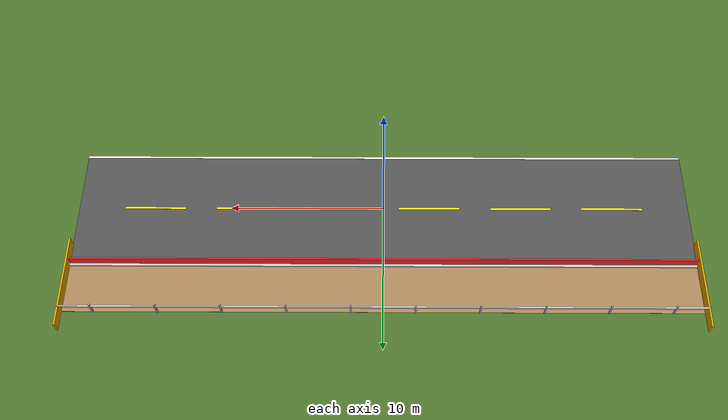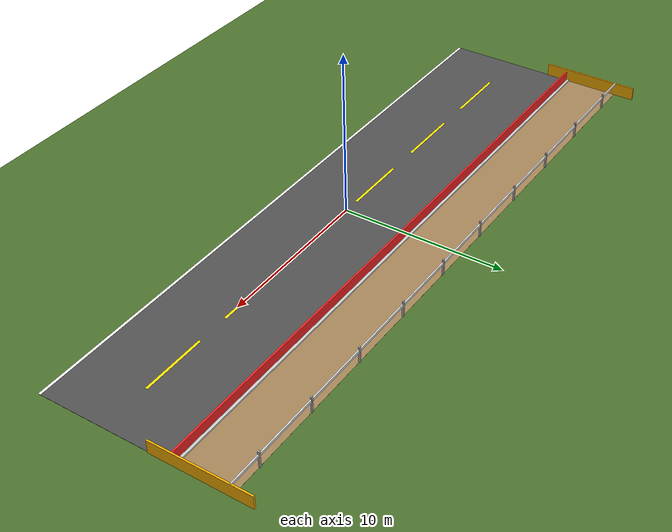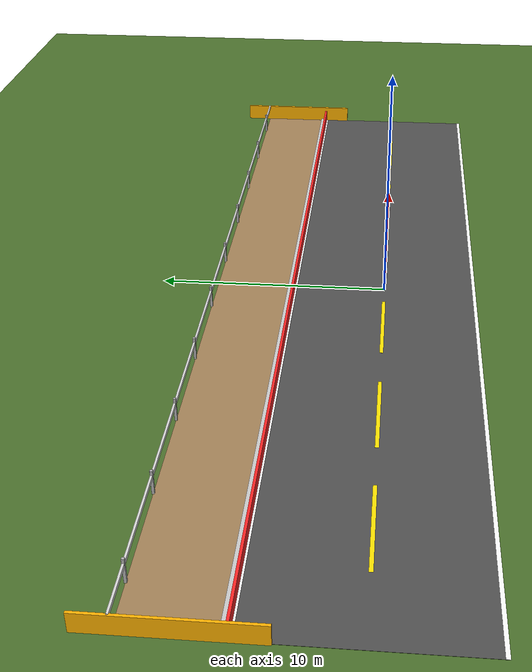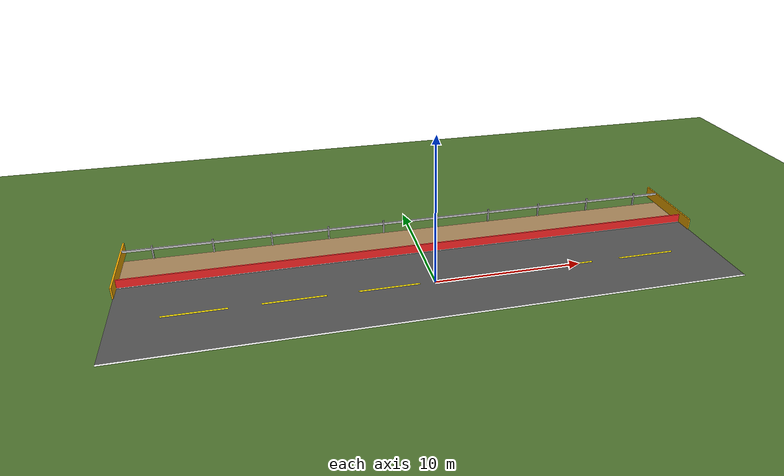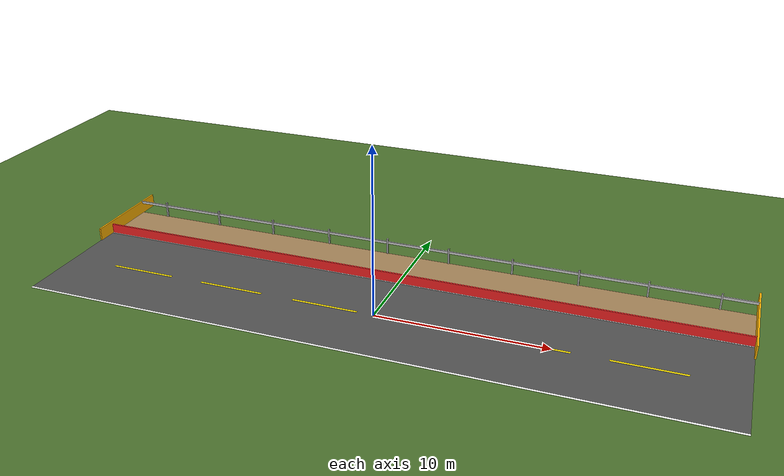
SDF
<?xml version="1.0"?>
<sdf version="1.9">
  <world name="road_shoulder">

    <!-- ======== Gazebo Harmonicシステムプラグイン ======== -->
    <plugin filename="gz-sim-physics-system"
            name="gz::sim::systems::Physics"/>
    <plugin filename="gz-sim-user-commands-system"
            name="gz::sim::systems::UserCommands"/>
    <plugin filename="gz-sim-scene-broadcaster-system"
            name="gz::sim::systems::SceneBroadcaster"/>
    <plugin filename="gz-sim-sensors-system"
            name="gz::sim::systems::Sensors">
      <render_engine>ogre2</render_engine>
    </plugin>
    <plugin filename="gz-sim-imu-system"
            name="gz::sim::systems::Imu"/>
    <plugin filename="gz-sim-contact-system"
            name="gz::sim::systems::Contact"/>

    <!-- ======== 物理設定 ======== -->
    <physics name="1ms" type="ignored">
      <max_step_size>0.001</max_step_size>
      <real_time_factor>1.0</real_time_factor>
      <real_time_update_rate>1000</real_time_update_rate>
    </physics>

    <!-- ======== 太陽光 ======== -->
    <light name="sun" type="directional">
      <cast_shadows>true</cast_shadows>
      <pose>0 0 20 0 0 0</pose>
      <diffuse>0.85 0.85 0.85 1</diffuse>
      <specular>0.2 0.2 0.2 1</specular>
      <attenuation>
        <range>1000</range>
        <constant>0.9</constant>
        <linear>0.01</linear>
        <quadratic>0.001</quadratic>
      </attenuation>
      <direction>-0.3 0.1 -0.9</direction>
    </light>

    <!-- ======== 地面 (全体) ======== -->
    <model name="ground">
      <static>true</static>
      <link name="ground_link">
        <collision name="ground_col">
          <geometry>
            <plane><normal>0 0 1</normal><size>60 30</size></plane>
          </geometry>
          <surface>
            <friction><ode><mu>0.7</mu><mu2>0.7</mu2></ode></friction>
          </surface>
        </collision>
        <visual name="ground_vis">
          <geometry>
            <plane><normal>0 0 1</normal><size>60 30</size></plane>
          </geometry>
          <!-- 草地・土色 -->
          <material>
            <ambient>0.25 0.35 0.15 1</ambient>
            <diffuse>0.30 0.45 0.18 1</diffuse>
          </material>
        </visual>
      </link>
    </model>

    <!-- ======== 舗装道路面 (Y=-4 〜 Y=+4, X=-20〜+20) ======== -->
    <model name="road_surface">
      <static>true</static>
      <pose>0 0 0.005 0 0 0</pose>
      <link name="road_link">
        <collision name="c">
          <geometry><box><size>40 8 0.01</size></box></geometry>
          <surface>
            <friction><ode><mu>0.8</mu><mu2>0.8</mu2></ode></friction>
          </surface>
        </collision>
        <visual name="v">
          <geometry><box><size>40 8 0.01</size></box></geometry>
          <!-- アスファルト色 -->
          <material>
            <ambient>0.28 0.28 0.28 1</ambient>
            <diffuse>0.32 0.32 0.32 1</diffuse>
          </material>
        </visual>
      </link>
    </model>

    <!-- ======== 道路中央線 (黄色破線) ======== -->
    <model name="center_line_1"><static>true</static><pose>-15 0 0.01 0 0 0</pose>
      <link name="l"><visual name="v"><geometry><box><size>4 0.15 0.005</size></box></geometry>
      <material><ambient>0.9 0.8 0.0 1</ambient><diffuse>1.0 0.9 0.0 1</diffuse></material></visual></link></model>
    <model name="center_line_2"><static>true</static><pose>-9 0 0.01 0 0 0</pose>
      <link name="l"><visual name="v"><geometry><box><size>4 0.15 0.005</size></box></geometry>
      <material><ambient>0.9 0.8 0.0 1</ambient><diffuse>1.0 0.9 0.0 1</diffuse></material></visual></link></model>
    <model name="center_line_3"><static>true</static><pose>-3 0 0.01 0 0 0</pose>
      <link name="l"><visual name="v"><geometry><box><size>4 0.15 0.005</size></box></geometry>
      <material><ambient>0.9 0.8 0.0 1</ambient><diffuse>1.0 0.9 0.0 1</diffuse></material></visual></link></model>
    <model name="center_line_4"><static>true</static><pose>3 0 0.01 0 0 0</pose>
      <link name="l"><visual name="v"><geometry><box><size>4 0.15 0.005</size></box></geometry>
      <material><ambient>0.9 0.8 0.0 1</ambient><diffuse>1.0 0.9 0.0 1</diffuse></material></visual></link></model>
    <model name="center_line_5"><static>true</static><pose>9 0 0.01 0 0 0</pose>
      <link name="l"><visual name="v"><geometry><box><size>4 0.15 0.005</size></box></geometry>
      <material><ambient>0.9 0.8 0.0 1</ambient><diffuse>1.0 0.9 0.0 1</diffuse></material></visual></link></model>
    <model name="center_line_6"><static>true</static><pose>15 0 0.01 0 0 0</pose>
      <link name="l"><visual name="v"><geometry><box><size>4 0.15 0.005</size></box></geometry>
      <material><ambient>0.9 0.8 0.0 1</ambient><diffuse>1.0 0.9 0.0 1</diffuse></material></visual></link></model>

    <!-- ======== 道路外側線 (白実線) 右側 Y=+4 ======== -->
    <model name="edge_line_right">
      <static>true</static>
      <pose>0 4 0.01 0 0 0</pose>
      <link name="l">
        <visual name="v">
          <geometry><box><size>40 0.15 0.005</size></box></geometry>
          <material><ambient>0.9 0.9 0.9 1</ambient><diffuse>1.0 1.0 1.0 1</diffuse></material>
        </visual>
      </link>
    </model>

    <!-- ======== 道路外側線 (白実線) 左側 Y=-4 ======== -->
    <model name="edge_line_left">
      <static>true</static>
      <pose>0 -4 0.01 0 0 0</pose>
      <link name="l">
        <visual name="v">
          <geometry><box><size>40 0.15 0.005</size></box></geometry>
          <material><ambient>0.9 0.9 0.9 1</ambient><diffuse>1.0 1.0 1.0 1</diffuse></material>
        </visual>
      </link>
    </model>

    <!-- ======== 路肩面 (Y=+4 〜 +7.5, 砂利/土色) ======== -->
    <model name="shoulder_surface">
      <static>true</static>
      <pose>0 5.75 0.003 0 0 0</pose>
      <link name="shoulder_link">
        <collision name="c">
          <geometry><box><size>40 3.5 0.006</size></box></geometry>
          <surface>
            <friction><ode><mu>0.6</mu><mu2>0.6</mu2></ode></friction>
          </surface>
        </collision>
        <visual name="v">
          <geometry><box><size>40 3.5 0.006</size></box></geometry>
          <!-- 路肩の砂利・土色 -->
          <material>
            <ambient>0.55 0.45 0.30 1</ambient>
            <diffuse>0.65 0.52 0.35 1</diffuse>
          </material>
        </visual>
      </link>
    </model>

    <!-- ======== 縁石 (curb) Y=+4 〜 +4.5 ======== -->
    <model name="curb_right">
      <static>true</static>
      <pose>0 4.25 0.05 0 0 0</pose>
      <link name="curb_link">
        <collision name="c">
          <geometry><box><size>40 0.15 0.10</size></box></geometry>
        </collision>
        <visual name="v">
          <geometry><box><size>40 0.15 0.10</size></box></geometry>
          <material><ambient>0.7 0.7 0.7 1</ambient><diffuse>0.8 0.8 0.8 1</diffuse></material>
        </visual>
      </link>
    </model>

    <!-- ======== ガードレール (Y=+7.5) ======== -->
    <!-- 支柱 (2m間隔) -->
    <model name="guardrail_post_1"><static>true</static><pose>-18 7.5 0.5 0 0 0</pose>
      <link name="l"><collision name="c"><geometry><box><size>0.10 0.10 1.0</size></box></geometry></collision>
      <visual name="v"><geometry><box><size>0.10 0.10 1.0</size></box></geometry>
      <material><ambient>0.7 0.7 0.7 1</ambient></material></visual></link></model>
    <model name="guardrail_post_2"><static>true</static><pose>-14 7.5 0.5 0 0 0</pose>
      <link name="l"><collision name="c"><geometry><box><size>0.10 0.10 1.0</size></box></geometry></collision>
      <visual name="v"><geometry><box><size>0.10 0.10 1.0</size></box></geometry>
      <material><ambient>0.7 0.7 0.7 1</ambient></material></visual></link></model>
    <model name="guardrail_post_3"><static>true</static><pose>-10 7.5 0.5 0 0 0</pose>
      <link name="l"><collision name="c"><geometry><box><size>0.10 0.10 1.0</size></box></geometry></collision>
      <visual name="v"><geometry><box><size>0.10 0.10 1.0</size></box></geometry>
      <material><ambient>0.7 0.7 0.7 1</ambient></material></visual></link></model>
    <model name="guardrail_post_4"><static>true</static><pose>-6 7.5 0.5 0 0 0</pose>
      <link name="l"><collision name="c"><geometry><box><size>0.10 0.10 1.0</size></box></geometry></collision>
      <visual name="v"><geometry><box><size>0.10 0.10 1.0</size></box></geometry>
      <material><ambient>0.7 0.7 0.7 1</ambient></material></visual></link></model>
    <model name="guardrail_post_5"><static>true</static><pose>-2 7.5 0.5 0 0 0</pose>
      <link name="l"><collision name="c"><geometry><box><size>0.10 0.10 1.0</size></box></geometry></collision>
      <visual name="v"><geometry><box><size>0.10 0.10 1.0</size></box></geometry>
      <material><ambient>0.7 0.7 0.7 1</ambient></material></visual></link></model>
    <model name="guardrail_post_6"><static>true</static><pose>2 7.5 0.5 0 0 0</pose>
      <link name="l"><collision name="c"><geometry><box><size>0.10 0.10 1.0</size></box></geometry></collision>
      <visual name="v"><geometry><box><size>0.10 0.10 1.0</size></box></geometry>
      <material><ambient>0.7 0.7 0.7 1</ambient></material></visual></link></model>
    <model name="guardrail_post_7"><static>true</static><pose>6 7.5 0.5 0 0 0</pose>
      <link name="l"><collision name="c"><geometry><box><size>0.10 0.10 1.0</size></box></geometry></collision>
      <visual name="v"><geometry><box><size>0.10 0.10 1.0</size></box></geometry>
      <material><ambient>0.7 0.7 0.7 1</ambient></material></visual></link></model>
    <model name="guardrail_post_8"><static>true</static><pose>10 7.5 0.5 0 0 0</pose>
      <link name="l"><collision name="c"><geometry><box><size>0.10 0.10 1.0</size></box></geometry></collision>
      <visual name="v"><geometry><box><size>0.10 0.10 1.0</size></box></geometry>
      <material><ambient>0.7 0.7 0.7 1</ambient></material></visual></link></model>
    <model name="guardrail_post_9"><static>true</static><pose>14 7.5 0.5 0 0 0</pose>
      <link name="l"><collision name="c"><geometry><box><size>0.10 0.10 1.0</size></box></geometry></collision>
      <visual name="v"><geometry><box><size>0.10 0.10 1.0</size></box></geometry>
      <material><ambient>0.7 0.7 0.7 1</ambient></material></visual></link></model>
    <model name="guardrail_post_10"><static>true</static><pose>18 7.5 0.5 0 0 0</pose>
      <link name="l"><collision name="c"><geometry><box><size>0.10 0.10 1.0</size></box></geometry></collision>
      <visual name="v"><geometry><box><size>0.10 0.10 1.0</size></box></geometry>
      <material><ambient>0.7 0.7 0.7 1</ambient></material></visual></link></model>

    <!-- ガードレール ビーム (水平梁) -->
    <model name="guardrail_beam">
      <static>true</static>
      <pose>0 7.5 0.75 0 0 0</pose>
      <link name="beam_link">
        <collision name="c">
          <geometry><box><size>40 0.08 0.15</size></box></geometry>
        </collision>
        <visual name="v">
          <geometry><box><size>40 0.08 0.15</size></box></geometry>
          <material><ambient>0.75 0.75 0.75 1</ambient><diffuse>0.85 0.85 0.85 1</diffuse></material>
        </visual>
      </link>
    </model>

    <!-- ======== 作業エリア境界バリア (ロボットの逸脱防止) ======== -->
    <!-- X=-20 端壁 (道路始端) -->
    <model name="barrier_x_neg">
      <static>true</static>
      <pose>-20 5.75 0.4 0 0 0</pose>
      <link name="l">
        <collision name="c"><geometry><box><size>0.1 6 0.8</size></box></geometry></collision>
        <visual name="v">
          <geometry><box><size>0.1 6 0.8</size></box></geometry>
          <material><ambient>0.9 0.6 0.0 1</ambient><diffuse>1.0 0.7 0.0 1</diffuse></material>
        </visual>
      </link>
    </model>

    <!-- X=+20 端壁 (道路終端) -->
    <model name="barrier_x_pos">
      <static>true</static>
      <pose>20 5.75 0.4 0 0 0</pose>
      <link name="l">
        <collision name="c"><geometry><box><size>0.1 6 0.8</size></box></geometry></collision>
        <visual name="v">
          <geometry><box><size>0.1 6 0.8</size></box></geometry>
          <material><ambient>0.9 0.6 0.0 1</ambient><diffuse>1.0 0.7 0.0 1</diffuse></material>
        </visual>
      </link>
    </model>

    <!-- Y=+4.0 車道境界壁 (ロボットが車道に入るのを防止) -->
    <model name="barrier_y_road">
      <static>true</static>
      <pose>0 4.05 0.3 0 0 0</pose>
      <link name="l">
        <collision name="c"><geometry><box><size>40 0.1 0.6</size></box></geometry></collision>
        <visual name="v">
          <geometry><box><size>40 0.1 0.6</size></box></geometry>
          <material><ambient>0.9 0.1 0.1 1</ambient><diffuse>1.0 0.15 0.15 1</diffuse></material>
        </visual>
      </link>
    </model>

    <!-- ======== GUIカメラ初期視点 ======== -->
    <gui fullscreen="0">
      <plugin filename="MinimalScene" name="3D View">
        <gz-gui>
          <title>3D View</title>
          <property type="bool" key="showTitleBar">false</property>
        </gz-gui>
        <engine>ogre2</engine>
        <scene>scene</scene>
        <ambient_light>0.4 0.4 0.4</ambient_light>
        <background_color>0.6 0.8 1.0</background_color>
        <!-- 斜め上空から俯瞰: 道路方向 (X軸) に沿って見下ろす -->
        <camera_pose>-20 -5 15 0 0.9 0.3</camera_pose>
      </plugin>
      <plugin filename="EntityContextMenuPlugin" name="Entity context menu"/>
      <plugin filename="GzSceneManager" name="Scene Manager"/>
      <plugin filename="InteractiveViewControl" name="Interactive view control"/>
      <plugin filename="TransformControl" name="Transform control"/>
      <plugin filename="Shapes" name="Shapes"/>
      <plugin filename="KeyPublisher" name="Key publisher"/>
    </gui>

  </world>
</sdf>
